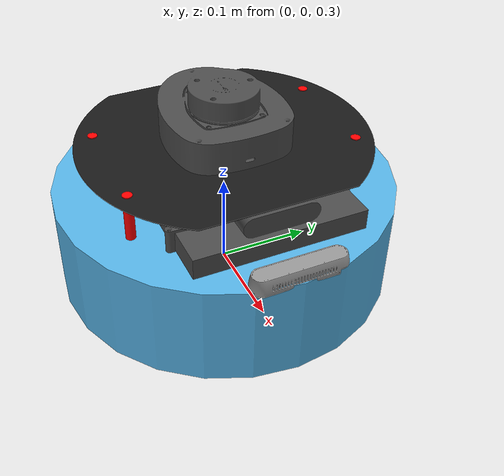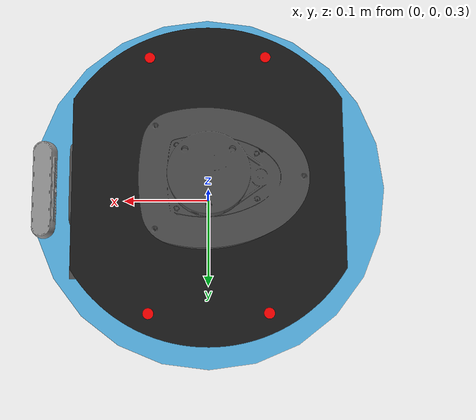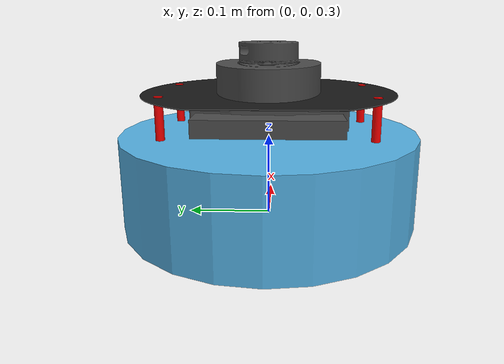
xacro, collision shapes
<?xml version="1.0"?>
<!-- Basic differential drive mobile base -->
<robot name="kobuki" xmlns:xacro="http://www.ros.org/wiki/xacro">

    <xacro:include filename="$(find kobuki_description)/urdf/common_properties.urdf.xacro" />
    <xacro:include filename="$(find kobuki_description)/urdf/kobuki_sim.gazebo.xacro"/>

    <xacro:include filename="$(find kobuki_description)/urdf/parts/kobuki_base.xacro"/>
    <xacro:include filename="$(find kobuki_description)/urdf/wheels/kobuki_wheels.xacro"/>
    <xacro:include filename="$(find kobuki_description)/urdf/sensors/lidar/kobuki_lidar.xacro"/>
    <xacro:include filename="$(find kobuki_description)/urdf/sensors/imu/kobuki_imu.xacro"/>
    <xacro:include filename="$(find kobuki_description)/urdf/camera/kobuki_camera.xacro"/>

    <link name="base_footprint"> </link>

                                                                          <!-- KOBUKI BASE -->
    <xacro:kobuki_base1 parent="base_footprint">
      <origin xyz="0 0 0.352"/>
    </xacro:kobuki_base1>

    <xacro:base1_gazebo/>

                                                                          <!-- KOBUKI BASE 2 -->
    <xacro:kobuki_base2 parent="base_link">
      <origin xyz="0.0 0.0 0.10201"/>
    </xacro:kobuki_base2>

    <xacro:base2_gazebo/>

                                                                          <!-- KOBUKI PC -->
    <xacro:kobuki_pc parent="base_link">
        <origin xyz="0.045 0.0 0.06901"/>
    </xacro:kobuki_pc>

    <xacro:pc_gazebo/>

                                                                          <!-- KOBUKI HEX -->
    <xacro:kobuki_hex parent="base_link" prefix="back_left">
      <origin xyz="-0.055 -0.12 0.06901"/>
    </xacro:kobuki_hex>

    <xacro:hex_gazebo prefix="back_left"/>

    <xacro:kobuki_hex parent="base_link" prefix="back_right">
      <origin xyz="-0.055 0.12 0.06901"/>
    </xacro:kobuki_hex>

    <xacro:hex_gazebo prefix="back_right"/>

    <xacro:kobuki_hex parent="base_link" prefix="front_left">
      <origin xyz="0.055 -0.12 0.06901"/>
    </xacro:kobuki_hex>

    <xacro:hex_gazebo prefix="front_left"/>

    <xacro:kobuki_hex parent="base_link" prefix="front_right">
      <origin xyz="0.055 0.12 0.06901"/>
    </xacro:kobuki_hex>

    <xacro:hex_gazebo prefix="front_right"/>

                                                                          <!-- KOBUKI WHEELS -->
    <xacro:kobuki_wheel parent="base_link" prefix="right">
        <origin xyz="0.00 -${0.23/2} -0.02699" rpy="${-PI/2} 0 0"/>
    </xacro:kobuki_wheel>

    <xacro:wheel_gazebo prefix="right"/>

    <xacro:kobuki_wheel parent="base_link" prefix="left">
        <origin xyz="0.00 ${0.23/2} -0.02699" rpy="${-PI/2} 0 0"/>
    </xacro:kobuki_wheel>

    <xacro:wheel_gazebo prefix="left"/>

    <xacro:kobuki_caster parent="base_link" prefix="front">
        <origin xyz="0.115 0.0 -0.04499" rpy="${-PI/2} 0 0"/>
    </xacro:kobuki_caster>

    <xacro:caster_gazebo prefix="front"/>

    <xacro:kobuki_caster parent="base_link" prefix="back">
        <origin xyz="-0.005 0.0 -0.04499" rpy="${-PI/2} 0 0"/>
    </xacro:kobuki_caster>

    <xacro:caster_gazebo prefix="back"/>

                                                                          <!-- KOBUKI LIDAR -->
    <xacro:kobuki_lidar parent="base2_link">
        <origin xyz="0.0 0.0 0.030" rpy="0 0 0"/>
    </xacro:kobuki_lidar>

    <xacro:lidar_gazebo/>

                                                                          <!-- KOBUKI IMU -->
    <xacro:kobuki_imu parent="base_link">
        <origin xyz="0.056 0.062 -0.03179" rpy="0 0 0"/>
    </xacro:kobuki_imu>

    <xacro:imu_gazebo/>

                                                                          <!-- KOBUKI RGBD CAMERA -->
                                                      <!-- Simple representation of the realsense D415 depth camera -->
    <xacro:kobuki_camera parent="base_link">
        <origin xyz="0.165 0.0 0.05801" rpy="0 0 0"/>
    </xacro:kobuki_camera>

    <xacro:kobuki_optical_camera parent="camera_link">
        <origin xyz="0 0 0" rpy="-1.57 0 -1.57"/>
    </xacro:kobuki_optical_camera>

    <xacro:rgbd_camera/>

                                                                          <!-- CONTROL -->
    <xacro:control_gazebo/>

</robot>

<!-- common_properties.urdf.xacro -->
<!--
  Various useful properties such as constants and materials
 -->
<robot name="xacro_properties" xmlns:xacro="http://ros.org/wiki/xacro">
  <xacro:property name="PI" value="3.1415926535897931" />
  <xacro:property name="max_vel" value="30" /> <!-- 7m/s, 1.91rad/s -->
  <xacro:property name="material_white">
    <material name="white">
      <color rgba="1 1 1 1"/>
    </material>
  </xacro:property>
  <xacro:property name="material_grey">
    <material name="grey">
      <color rgba="0.5 0.5 0.5 1"/>
    </material>
  </xacro:property>
  <xacro:property name="material_light_grey">
    <material name="light_grey">
      <color rgba="0.6 0.6 0.6 1"/>
    </material>
  </xacro:property>
  <xacro:property name="material_dark_grey">
    <material name="dark_grey">
      <color rgba="0.3 0.3 0.3 1"/>
    </material>
  </xacro:property>
  <xacro:property name="material_black">
    <material name="black">
      <color rgba="0.1 0.1 0.1 1"/>
    </material>
  </xacro:property>
  <xacro:property name="material_red">
    <material name="red">
      <color rgba="1 0 0 1"/>
    </material>
  </xacro:property>
  <xacro:property name="material_green">
    <material name="green">
      <color rgba="0.0 0.8 0.0 1"/>
    </material>
  </xacro:property>
  <xacro:property name="material_blue">
    <material name="blue">
      <color rgba="0.0 0.0 1.0 1"/>
    </material>
  </xacro:property>
  <xacro:property name="material_grey_blue">
    <material name="grey_blue">
      <color rgba="0.4 0.4 1.0 1"/>
    </material>
  </xacro:property>
  <xacro:property name="material_orange">
    <material name="orange">
      <color rgba="1.0 0.7 0.0 1"/>
    </material>
  </xacro:property>
</robot>

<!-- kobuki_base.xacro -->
<robot xmlns:xacro="https://www.ros.org/wiki/xacro">

    <xacro:include filename="$(find kobuki_description)/urdf/parts/kobuki_base.gazebo.xacro"/>

                                                                            <!-- KOBUKI BASE -->

    <xacro:macro name="kobuki_base1" params="parent *joint_origin">
        <joint name="base_link_joint" type="fixed">
            <xacro:insert_block name="joint_origin"/>
            <parent link="${parent}"/>
            <child link="base_link"/>
        </joint>

        <link name="base_link">
            <visual>
                <geometry>
                    <mesh filename="file://$(find kobuki_description)/meshes/main_body.dae" />
                </geometry>
            </visual>

            <collision>
                <geometry>
                    <cylinder length="0.10938" radius="0.178"/>
                </geometry>
            </collision>

            <inertial>
                <origin xyz="0.01 0 0"/>
                <!-- kobuki mass = 2.4  pc mass = 1.46 -->
                <mass value="2.4"/>
                <inertia ixx="0.0001" ixy="0.0" ixz="0.0"
                        iyy="0.0001" iyz="0.0"
                        izz="0.0001" />
            </inertial>
        </link>
    </xacro:macro>

                                                                            <!-- KOBUKI PLATFORM-->

    <xacro:macro name="kobuki_base2" params="parent *joint_origin">
        <joint name="base2_link_joint" type="fixed">
            <xacro:insert_block name="joint_origin"/>
            <parent link="${parent}"/>
            <child link="base2_link"/>
        </joint>

        <link name="base2_link">
            <visual>
                <geometry>
                    <mesh filename="file://$(find kobuki_description)/meshes/stl/BASE2_scaled_rotated.stl"/>
                </geometry>
                <xacro:insert_block name="material_black"/>
            </visual>

            <collision>
                <geometry>
                    <mesh filename="file://$(find kobuki_description)/meshes/stl/BASE2_scaled_rotated.stl"/>
                </geometry>
            </collision>

            <inertial>
                <origin xyz="0 0 0"/>
                <mass value="0.840"/>
                <inertia ixx="0.00305872" ixy="0.0" ixz="0.0"
                        iyy="0.00239157" iyz="0.0"
                        izz="0.0054502" />
            </inertial>
        </link>
    </xacro:macro>

                                                                            <!-- KOBUKI PC-->

    <xacro:macro name="kobuki_pc" params="parent *joint_origin">
        <joint name="pc_link_joint" type="fixed">
            <xacro:insert_block name="joint_origin"/>
            <parent link="${parent}"/>
            <child link="pc_link"/>
        </joint>

        <link name="pc_link">
            <visual>
                <geometry>
                    <mesh filename="file://$(find kobuki_description)/meshes/stl/kobuki_pc2_rotated.stl"/>
                </geometry>
                <xacro:insert_block name="material_dark_grey"/>
            </visual>

            <collision>
                <geometry>
                    <mesh filename="file://$(find kobuki_description)/meshes/stl/kobuki_pc2_rotated.stl"/>
                </geometry>
            </collision>

            <inertial>
                <origin xyz="0 0 0"/>
                <mass value="1.46"/>
                <inertia ixx="0.00359729" ixy="0.0" ixz="0.0"
                        iyy="0.00414973" iyz="0.0"
                        izz="0.00706535" />
            </inertial>
        </link>
    </xacro:macro>
                                                                            <!-- KOBUKI CYLINDERS -->

    <xacro:macro name="kobuki_hex" params="prefix parent *joint_origin">
        <joint name="${prefix}_hex_joint" type="fixed">
            <xacro:insert_block name="joint_origin"/>
            <parent link="${parent}"/>
            <child link="${prefix}_hex_link"/>
        </joint>

        <link name="${prefix}_hex_link">
            <visual>
                <geometry>
                    <cylinder length="0.07" radius="0.005"/>
                </geometry>
                <origin xyz="0.0 0 0.0" rpy="0 0 0"/>
                <xacro:insert_block name="material_red"/>
            </visual>

            <collision>
                <geometry>
                    <cylinder length="0.07" radius="0.005"/>
                </geometry>
            <origin xyz="0.0 0 0.0" rpy="0 0 0"/>
            </collision>

            <inertial>
                <origin xyz="0.00 0 0"/>
                <mass value="0.01"/>
                <inertia ixx="0.0000125" ixy="0.0" ixz="0.0"
                        iyy="0.0000125" iyz="0.0"
                        izz="0.00001" />
            </inertial>
        </link>
    </xacro:macro>

                                                                            <!-- KOBUKI CASTER -->

    <xacro:macro name="kobuki_caster" params="prefix parent *joint_origin">
        <joint name="${prefix}_caster_joint" type="fixed">
            <xacro:insert_block name="joint_origin"/>
            <parent link="${parent}"/>
            <child link="${prefix}_caster_link"/>
        </joint>

        <link name="${prefix}_caster_link">
            <collision>
                <geometry>
                    <cylinder length="0.0176" radius="0.017"/>
                </geometry>
                <origin rpy="0 0 0" xyz="0 0 0"/>
            </collision>

            <inertial>
                <mass value="0.01" />
                <origin xyz="0 0 0" />
                <inertia ixx="0.001" ixy="0.0" ixz="0.0"
                         iyy="0.001" iyz="0.0"
                         izz="0.001" />
            </inertial>
        </link>
    </xacro:macro>

</robot>

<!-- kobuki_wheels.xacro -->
<robot xmlns:xacro="https://www.ros.org/wiki/xacro">

    <xacro:include filename="$(find kobuki_description)/urdf/wheels/kobuki_wheels.gazebo.xacro"/>

    <xacro:macro name="kobuki_wheel" params="prefix parent *joint_origin">
        <joint name="${prefix}_wheel_joint" type="continuous">
            <xacro:insert_block name="joint_origin"/>
            <parent link="${parent}"/>
            <child link="${prefix}_wheel_link"/>
            <limit effort="50000" velocity="${max_vel}"/>
            <dynamics damping="1.0" friction="1.0"/>
            <axis xyz="0 0 1"/>
        </joint>

        <link name="${prefix}_wheel_link">
            <visual>
                <origin xyz="0 0 0" rpy="0 0 0"/>
                <geometry>
                    <mesh filename="file://$(find kobuki_description)/meshes/wheel.dae"/>
                </geometry>
            </visual>

            <collision>
                <geometry>
                    <cylinder length="0.0206" radius="0.0352"/>
                </geometry>
                <origin rpy="0 0 0" xyz="0 0 0"/>
            </collision>

            <inertial>
                <mass value="0.01" />
                <origin xyz="0 0 0" />
                <inertia ixx="0.001" ixy="0.0" ixz="0.0"
                         iyy="0.001" iyz="0.0"
                         izz="0.001" />
            </inertial>
        </link>
    </xacro:macro>

</robot>

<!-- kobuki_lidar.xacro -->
<robot xmlns:xacro="https://www.ros.org/wiki/xacro">

    <xacro:include filename="$(find kobuki_description)/urdf/sensors/lidar/kobuki_lidar.gazebo.xacro"/>

    <xacro:macro name="kobuki_lidar" params="parent *joint_origin">
        <joint name="lidar_joint" type="fixed">
            <xacro:insert_block name="joint_origin"/>
            <parent link="${parent}"/>
            <child link="lidar_link"/>
        </joint>
        <link name="lidar_link">
            <visual>
                <geometry>
                    <mesh filename="file://$(find kobuki_description)/meshes/stl/lidar2_rotated.stl"/>
                </geometry>
            </visual>

            <collision>
                <geometry>
                    <mesh filename="file://$(find kobuki_description)/meshes/stl/lidar2_rotated.stl"/>
                </geometry>
            </collision>

            <inertial>
                <origin xyz="0 0 0"/>
                <mass value="0.170"/>
                <inertia ixx="0.000000087" ixy="0" ixz="0" iyy="0.000000087" iyz="0" izz="0.00006664" />
            </inertial>
        </link>
    </xacro:macro>
</robot>

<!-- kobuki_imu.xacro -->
<robot xmlns:xacro="https://www.ros.org/wiki/xacro">

    <xacro:include filename="$(find kobuki_description)/urdf/sensors/imu/kobuki_imu.gazebo.xacro"/>

    <xacro:macro name="kobuki_imu" params="parent *joint_origin">
        <joint name="imu_joint" type="fixed">
            <xacro:insert_block name="joint_origin"/>
            <axis xyz="0 1 0"/>
            <parent link="${parent}"/>
            <child link="imu_link"/>
        </joint>
        <link name="imu_link">
            <inertial>
                <mass value="0.001"/>
                <origin xyz="0 0 0" rpy="0 0 0"/>
                <inertia ixx="0.0001" ixy="0" ixz="0"
                         iyy="0.000001" iyz="0"
                         izz="0.0001"/>
            </inertial>
        </link>
    </xacro:macro>
</robot>

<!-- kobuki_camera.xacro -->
<robot xmlns:xacro="https://www.ros.org/wiki/xacro">

    <xacro:include filename="$(find kobuki_description)/urdf/camera/kobuki_camera.gazebo.xacro"/>

    <xacro:macro name="kobuki_camera" params="parent *joint_origin">

        <joint name="camera_joint" type="fixed">
            <xacro:insert_block name="joint_origin"/>
            <parent link="${parent}"/>
            <child link="camera_link"/>
        </joint>

        <link name="camera_link">
            <visual>
                <geometry>
                    <mesh filename="file://$(find kobuki_description)/meshes/stl/d415s_rotated.stl" />
                </geometry>
                <xacro:insert_block name="material_light_grey"/>
            </visual>

            <collision>
                <geometry>
                    <mesh filename="file://$(find kobuki_description)/meshes/stl/d415s_rotated.stl" />
                </geometry>
            </collision>

            <inertial>
                <origin xyz="0 0 0.0"/>
                <mass value="0.064"/>
                <inertia ixx="0.003881243" ixy="0" ixz="0" iyy="0.000498940" iyz="0" izz="0.003879257" />
            </inertial>
        </link>

    </xacro:macro>

    <xacro:macro name="kobuki_optical_camera" params="parent *joint_origin">

        <joint name="camera__optical_joint" type="fixed">
            <xacro:insert_block name="joint_origin"/>
            <parent link="${parent}"/>
            <child link="camera_link_optical"/>
        </joint>

        <link name="camera_link_optical">
        </link>

    </xacro:macro>
</robot>
